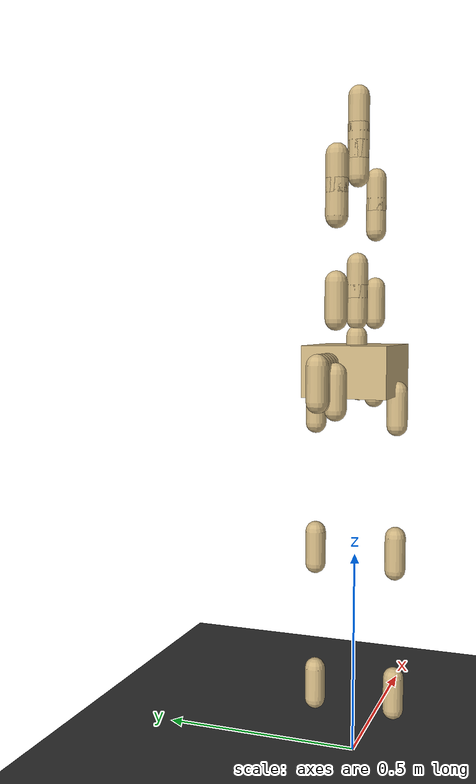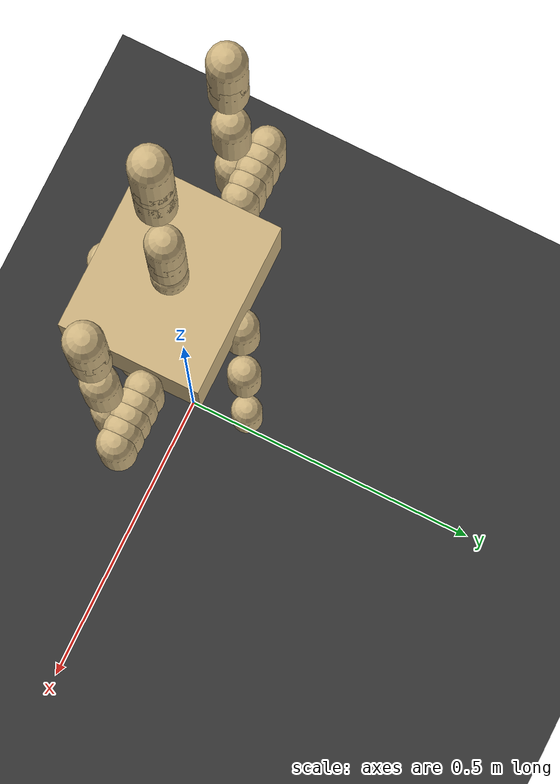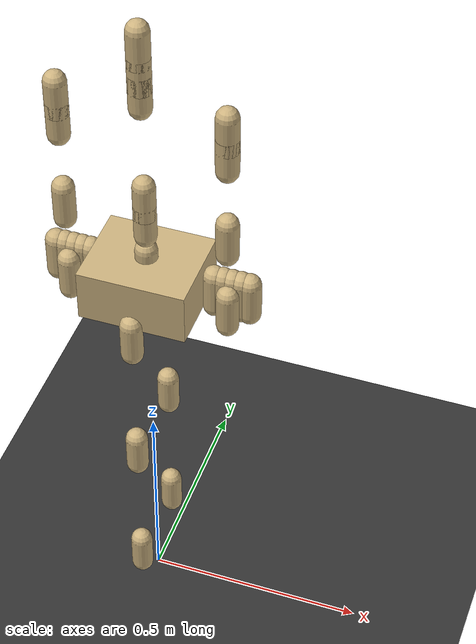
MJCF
<?xml version='1.0' encoding='utf-8'?>
<!-- Robotrola R-01 research MJCF scaffold. Inertias/estimated; not measured hardware. Not a validated digital twin. -->
<mujoco model="robotrola_r01_research">
  <compiler angle="radian" autolimits="true" />
  <option timestep="0.002" gravity="0 0 -9.81" />
  <default>
    <joint damping="0.5" armature="0.01" limited="true" />
    <geom type="capsule" size="0.03" rgba="0.8 0.7 0.5 1" />
  </default>
  <worldbody>
    <geom name="floor" type="plane" size="2 2 0.1" rgba="0.2 0.2 0.2 1" />
    <body name="pelvis_link" pos="0 0 0.95">
      <geom name="pelvis_geom" type="box" size="0.12 0.1 0.06" />
      <inertial mass="8" pos="0 0 0" diaginertia="0.08 0.06 0.05" />
      <body name="waist_link" pos="0 0 0.08">
        <geom name="waist_link_geom" type="capsule" fromto="0 0 0 0 0 -0.08" size="0.025" />
        <inertial mass="0.5" pos="0 0 -0.04" diaginertia="0.002 0.002 0.001" />
        <joint name="waist_yaw" type="hinge" axis="0 0 1" range="-0.6 0.6" />
        <body name="torso_link" pos="0 0 0.12">
          <geom name="torso_link_geom" type="capsule" fromto="0 0 0 0 0 -0.08" size="0.025" />
          <inertial mass="0.5" pos="0 0 -0.04" diaginertia="0.002 0.002 0.001" />
          <joint name="waist_pitch" type="hinge" axis="0 1 0" range="-0.35 0.45" />
          <body name="torso_roll_link" pos="0 0 0.05">
            <geom name="torso_roll_link_geom" type="capsule" fromto="0 0 0 0 0 -0.08" size="0.025" />
            <inertial mass="0.5" pos="0 0 -0.04" diaginertia="0.002 0.002 0.001" />
            <joint name="waist_roll" type="hinge" axis="1 0 0" range="-0.3 0.3" />
            <body name="neck_yaw_link" pos="0 0 0.28">
              <geom name="neck_yaw_link_geom" type="capsule" fromto="0 0 0 0 0 -0.08" size="0.025" />
              <inertial mass="0.5" pos="0 0 -0.04" diaginertia="0.002 0.002 0.001" />
              <joint name="neck_yaw" type="hinge" axis="0 0 1" range="-0.9 0.9" />
              <body name="neck_pitch_link" pos="0 0 0.04">
                <geom name="neck_pitch_link_geom" type="capsule" fromto="0 0 0 0 0 -0.08" size="0.025" />
                <inertial mass="0.5" pos="0 0 -0.04" diaginertia="0.002 0.002 0.001" />
                <joint name="neck_pitch" type="hinge" axis="0 1 0" range="-0.5 0.6" />
                <body name="head_link" pos="0 0 0.06">
                  <geom name="head_link_geom" type="capsule" fromto="0 0 0 0 0 -0.08" size="0.025" />
                  <inertial mass="0.5" pos="0 0 -0.04" diaginertia="0.002 0.002 0.001" />
                  <joint name="neck_roll" type="hinge" axis="1 0 0" range="-0.35 0.35" />
                </body>
              </body>
            </body>
            <body name="left_shoulder_pitch_link" pos="0.18 0 0.22">
              <geom name="left_shoulder_pitch_link_geom" type="capsule" fromto="0 0 0 0 0 -0.08" size="0.025" />
              <inertial mass="0.5" pos="0 0 -0.04" diaginertia="0.002 0.002 0.001" />
              <joint name="left_shoulder_pitch" type="hinge" axis="0 1 0" range="-1.4 1.4" />
              <body name="left_shoulder_roll_link" pos="0 0 0">
                <geom name="left_shoulder_roll_link_geom" type="capsule" fromto="0 0 0 0 0 -0.08" size="0.025" />
                <inertial mass="0.5" pos="0 0 -0.04" diaginertia="0.002 0.002 0.001" />
                <joint name="left_shoulder_roll" type="hinge" axis="1 0 0" range="-0.3 1.5" />
                <body name="left_upper_arm_link" pos="0 0 -0.05">
                  <geom name="left_upper_arm_link_geom" type="capsule" fromto="0 0 0 0 0 -0.08" size="0.025" />
                  <inertial mass="0.5" pos="0 0 -0.04" diaginertia="0.002 0.002 0.001" />
                  <joint name="left_shoulder_yaw" type="hinge" axis="0 0 1" range="-1.2 1.2" />
                  <body name="left_forearm_link" pos="0 0 -0.22">
                    <geom name="left_forearm_link_geom" type="capsule" fromto="0 0 0 0 0 -0.08" size="0.025" />
                    <inertial mass="0.5" pos="0 0 -0.04" diaginertia="0.002 0.002 0.001" />
                    <joint name="left_elbow" type="hinge" axis="0 1 0" range="0.0 2.2" />
                    <body name="left_wrist_yaw_link" pos="0 0 -0.2">
                      <geom name="left_wrist_yaw_link_geom" type="capsule" fromto="0 0 0 0 0 -0.08" size="0.025" />
                      <inertial mass="0.5" pos="0 0 -0.04" diaginertia="0.002 0.002 0.001" />
                      <joint name="left_wrist_yaw" type="hinge" axis="0 0 1" range="-1.4 1.4" />
                      <body name="left_wrist_pitch_link" pos="0 0 0">
                        <geom name="left_wrist_pitch_link_geom" type="capsule" fromto="0 0 0 0 0 -0.08" size="0.025" />
                        <inertial mass="0.5" pos="0 0 -0.04" diaginertia="0.002 0.002 0.001" />
                        <joint name="left_wrist_pitch" type="hinge" axis="0 1 0" range="-0.9 0.9" />
                        <body name="left_hand_link" pos="0 0 0">
                          <geom name="left_hand_link_geom" type="capsule" fromto="0 0 0 0 0 -0.08" size="0.025" />
                          <inertial mass="0.5" pos="0 0 -0.04" diaginertia="0.002 0.002 0.001" />
                          <joint name="left_wrist_roll" type="hinge" axis="1 0 0" range="-0.9 0.9" />
                          <body name="left_thumb_link" pos="-0.04 0.03 0.02">
                            <geom name="left_thumb_link_geom" type="capsule" fromto="0 0 0 0 0 -0.08" size="0.025" />
                            <inertial mass="0.5" pos="0 0 -0.04" diaginertia="0.002 0.002 0.001" />
                            <joint name="left_thumb_curl" type="hinge" axis="0 1 0" range="0.0 1.4" />
                          </body>
                          <body name="left_index_link" pos="-0.02 0.03 0.02">
                            <geom name="left_index_link_geom" type="capsule" fromto="0 0 0 0 0 -0.08" size="0.025" />
                            <inertial mass="0.5" pos="0 0 -0.04" diaginertia="0.002 0.002 0.001" />
                            <joint name="left_index_curl" type="hinge" axis="0 1 0" range="0.0 1.4" />
                          </body>
                          <body name="left_middle_link" pos="0.0 0.03 0.02">
                            <geom name="left_middle_link_geom" type="capsule" fromto="0 0 0 0 0 -0.08" size="0.025" />
                            <inertial mass="0.5" pos="0 0 -0.04" diaginertia="0.002 0.002 0.001" />
                            <joint name="left_middle_curl" type="hinge" axis="0 1 0" range="0.0 1.4" />
                          </body>
                          <body name="left_ring_link" pos="0.02 0.03 0.02">
                            <geom name="left_ring_link_geom" type="capsule" fromto="0 0 0 0 0 -0.08" size="0.025" />
                            <inertial mass="0.5" pos="0 0 -0.04" diaginertia="0.002 0.002 0.001" />
                            <joint name="left_ring_curl" type="hinge" axis="0 1 0" range="0.0 1.4" />
                          </body>
                          <body name="left_pinky_link" pos="0.04 0.03 0.02">
                            <geom name="left_pinky_link_geom" type="capsule" fromto="0 0 0 0 0 -0.08" size="0.025" />
                            <inertial mass="0.5" pos="0 0 -0.04" diaginertia="0.002 0.002 0.001" />
                            <joint name="left_pinky_curl" type="hinge" axis="0 1 0" range="0.0 1.4" />
                          </body>
                        </body>
                      </body>
                    </body>
                  </body>
                </body>
              </body>
            </body>
            <body name="right_shoulder_pitch_link" pos="-0.18 0 0.22">
              <geom name="right_shoulder_pitch_link_geom" type="capsule" fromto="0 0 0 0 0 -0.08" size="0.025" />
              <inertial mass="0.5" pos="0 0 -0.04" diaginertia="0.002 0.002 0.001" />
              <joint name="right_shoulder_pitch" type="hinge" axis="0 1 0" range="-1.4 1.4" />
              <body name="right_shoulder_roll_link" pos="0 0 0">
                <geom name="right_shoulder_roll_link_geom" type="capsule" fromto="0 0 0 0 0 -0.08" size="0.025" />
                <inertial mass="0.5" pos="0 0 -0.04" diaginertia="0.002 0.002 0.001" />
                <joint name="right_shoulder_roll" type="hinge" axis="1 0 0" range="-1.5 0.3" />
                <body name="right_upper_arm_link" pos="0 0 -0.05">
                  <geom name="right_upper_arm_link_geom" type="capsule" fromto="0 0 0 0 0 -0.08" size="0.025" />
                  <inertial mass="0.5" pos="0 0 -0.04" diaginertia="0.002 0.002 0.001" />
                  <joint name="right_shoulder_yaw" type="hinge" axis="0 0 1" range="-1.2 1.2" />
                  <body name="right_forearm_link" pos="0 0 -0.22">
                    <geom name="right_forearm_link_geom" type="capsule" fromto="0 0 0 0 0 -0.08" size="0.025" />
                    <inertial mass="0.5" pos="0 0 -0.04" diaginertia="0.002 0.002 0.001" />
                    <joint name="right_elbow" type="hinge" axis="0 1 0" range="0.0 2.2" />
                    <body name="right_wrist_yaw_link" pos="0 0 -0.2">
                      <geom name="right_wrist_yaw_link_geom" type="capsule" fromto="0 0 0 0 0 -0.08" size="0.025" />
                      <inertial mass="0.5" pos="0 0 -0.04" diaginertia="0.002 0.002 0.001" />
                      <joint name="right_wrist_yaw" type="hinge" axis="0 0 1" range="-1.4 1.4" />
                      <body name="right_wrist_pitch_link" pos="0 0 0">
                        <geom name="right_wrist_pitch_link_geom" type="capsule" fromto="0 0 0 0 0 -0.08" size="0.025" />
                        <inertial mass="0.5" pos="0 0 -0.04" diaginertia="0.002 0.002 0.001" />
                        <joint name="right_wrist_pitch" type="hinge" axis="0 1 0" range="-0.9 0.9" />
                        <body name="right_hand_link" pos="0 0 0">
                          <geom name="right_hand_link_geom" type="capsule" fromto="0 0 0 0 0 -0.08" size="0.025" />
                          <inertial mass="0.5" pos="0 0 -0.04" diaginertia="0.002 0.002 0.001" />
                          <joint name="right_wrist_roll" type="hinge" axis="1 0 0" range="-0.9 0.9" />
                          <body name="right_thumb_link" pos="-0.04 0.03 0.02">
                            <geom name="right_thumb_link_geom" type="capsule" fromto="0 0 0 0 0 -0.08" size="0.025" />
                            <inertial mass="0.5" pos="0 0 -0.04" diaginertia="0.002 0.002 0.001" />
                            <joint name="right_thumb_curl" type="hinge" axis="0 1 0" range="0.0 1.4" />
                          </body>
                          <body name="right_index_link" pos="-0.02 0.03 0.02">
                            <geom name="right_index_link_geom" type="capsule" fromto="0 0 0 0 0 -0.08" size="0.025" />
                            <inertial mass="0.5" pos="0 0 -0.04" diaginertia="0.002 0.002 0.001" />
                            <joint name="right_index_curl" type="hinge" axis="0 1 0" range="0.0 1.4" />
                          </body>
                          <body name="right_middle_link" pos="0.0 0.03 0.02">
                            <geom name="right_middle_link_geom" type="capsule" fromto="0 0 0 0 0 -0.08" size="0.025" />
                            <inertial mass="0.5" pos="0 0 -0.04" diaginertia="0.002 0.002 0.001" />
                            <joint name="right_middle_curl" type="hinge" axis="0 1 0" range="0.0 1.4" />
                          </body>
                          <body name="right_ring_link" pos="0.02 0.03 0.02">
                            <geom name="right_ring_link_geom" type="capsule" fromto="0 0 0 0 0 -0.08" size="0.025" />
                            <inertial mass="0.5" pos="0 0 -0.04" diaginertia="0.002 0.002 0.001" />
                            <joint name="right_ring_curl" type="hinge" axis="0 1 0" range="0.0 1.4" />
                          </body>
                          <body name="right_pinky_link" pos="0.04 0.03 0.02">
                            <geom name="right_pinky_link_geom" type="capsule" fromto="0 0 0 0 0 -0.08" size="0.025" />
                            <inertial mass="0.5" pos="0 0 -0.04" diaginertia="0.002 0.002 0.001" />
                            <joint name="right_pinky_curl" type="hinge" axis="0 1 0" range="0.0 1.4" />
                          </body>
                        </body>
                      </body>
                    </body>
                  </body>
                </body>
              </body>
            </body>
          </body>
        </body>
      </body>
      <body name="left_hip_yaw_link" pos="0 0.1 -0.05">
        <geom name="left_hip_yaw_link_geom" type="capsule" fromto="0 0 0 0 0 -0.08" size="0.025" />
        <inertial mass="0.5" pos="0 0 -0.04" diaginertia="0.002 0.002 0.001" />
        <joint name="left_hip_yaw" type="hinge" axis="0 0 1" range="-0.6 0.6" />
        <body name="left_hip_roll_link" pos="0 0 0">
          <geom name="left_hip_roll_link_geom" type="capsule" fromto="0 0 0 0 0 -0.08" size="0.025" />
          <inertial mass="0.5" pos="0 0 -0.04" diaginertia="0.002 0.002 0.001" />
          <joint name="left_hip_roll" type="hinge" axis="1 0 0" range="-0.4 0.4" />
          <body name="left_thigh_link" pos="0 0 0">
            <geom name="left_thigh_link_geom" type="capsule" fromto="0 0 0 0 0 -0.08" size="0.025" />
            <inertial mass="0.5" pos="0 0 -0.04" diaginertia="0.002 0.002 0.001" />
            <joint name="left_hip_pitch" type="hinge" axis="0 1 0" range="-1.4 0.8" />
            <body name="left_shin_link" pos="0 0 -0.35">
              <geom name="left_shin_link_geom" type="capsule" fromto="0 0 0 0 0 -0.08" size="0.025" />
              <inertial mass="0.5" pos="0 0 -0.04" diaginertia="0.002 0.002 0.001" />
              <joint name="left_knee" type="hinge" axis="0 1 0" range="0.0 2.2" />
              <body name="left_ankle_pitch_link" pos="0 0 -0.35">
                <geom name="left_ankle_pitch_link_geom" type="capsule" fromto="0 0 0 0 0 -0.08" size="0.025" />
                <inertial mass="0.5" pos="0 0 -0.04" diaginertia="0.002 0.002 0.001" />
                <joint name="left_ankle_pitch" type="hinge" axis="0 1 0" range="-0.7 0.7" />
                <body name="left_foot_link" pos="0 0 0">
                  <geom name="left_foot_link_geom" type="capsule" fromto="0 0 0 0 0 -0.08" size="0.025" />
                  <inertial mass="0.5" pos="0 0 -0.04" diaginertia="0.002 0.002 0.001" />
                  <joint name="left_ankle_roll" type="hinge" axis="1 0 0" range="-0.4 0.4" />
                </body>
              </body>
            </body>
          </body>
        </body>
      </body>
      <body name="right_hip_yaw_link" pos="0 -0.1 -0.05">
        <geom name="right_hip_yaw_link_geom" type="capsule" fromto="0 0 0 0 0 -0.08" size="0.025" />
        <inertial mass="0.5" pos="0 0 -0.04" diaginertia="0.002 0.002 0.001" />
        <joint name="right_hip_yaw" type="hinge" axis="0 0 1" range="-0.6 0.6" />
        <body name="right_hip_roll_link" pos="0 0 0">
          <geom name="right_hip_roll_link_geom" type="capsule" fromto="0 0 0 0 0 -0.08" size="0.025" />
          <inertial mass="0.5" pos="0 0 -0.04" diaginertia="0.002 0.002 0.001" />
          <joint name="right_hip_roll" type="hinge" axis="1 0 0" range="-0.4 0.4" />
          <body name="right_thigh_link" pos="0 0 0">
            <geom name="right_thigh_link_geom" type="capsule" fromto="0 0 0 0 0 -0.08" size="0.025" />
            <inertial mass="0.5" pos="0 0 -0.04" diaginertia="0.002 0.002 0.001" />
            <joint name="right_hip_pitch" type="hinge" axis="0 1 0" range="-1.4 0.8" />
            <body name="right_shin_link" pos="0 0 -0.35">
              <geom name="right_shin_link_geom" type="capsule" fromto="0 0 0 0 0 -0.08" size="0.025" />
              <inertial mass="0.5" pos="0 0 -0.04" diaginertia="0.002 0.002 0.001" />
              <joint name="right_knee" type="hinge" axis="0 1 0" range="0.0 2.2" />
              <body name="right_ankle_pitch_link" pos="0 0 -0.35">
                <geom name="right_ankle_pitch_link_geom" type="capsule" fromto="0 0 0 0 0 -0.08" size="0.025" />
                <inertial mass="0.5" pos="0 0 -0.04" diaginertia="0.002 0.002 0.001" />
                <joint name="right_ankle_pitch" type="hinge" axis="0 1 0" range="-0.7 0.7" />
                <body name="right_foot_link" pos="0 0 0">
                  <geom name="right_foot_link_geom" type="capsule" fromto="0 0 0 0 0 -0.08" size="0.025" />
                  <inertial mass="0.5" pos="0 0 -0.04" diaginertia="0.002 0.002 0.001" />
                  <joint name="right_ankle_roll" type="hinge" axis="1 0 0" range="-0.4 0.4" />
                </body>
              </body>
            </body>
          </body>
        </body>
      </body>
    </body>
  </worldbody>
  <actuator>
    <position name="act_waist_yaw" joint="waist_yaw" kp="20" ctrlrange="-0.6 0.6" />
    <position name="act_waist_pitch" joint="waist_pitch" kp="20" ctrlrange="-0.35 0.45" />
    <position name="act_waist_roll" joint="waist_roll" kp="20" ctrlrange="-0.3 0.3" />
    <position name="act_neck_yaw" joint="neck_yaw" kp="20" ctrlrange="-0.9 0.9" />
    <position name="act_neck_pitch" joint="neck_pitch" kp="20" ctrlrange="-0.5 0.6" />
    <position name="act_neck_roll" joint="neck_roll" kp="20" ctrlrange="-0.35 0.35" />
    <position name="act_left_shoulder_pitch" joint="left_shoulder_pitch" kp="20" ctrlrange="-1.4 1.4" />
    <position name="act_left_shoulder_roll" joint="left_shoulder_roll" kp="20" ctrlrange="-0.3 1.5" />
    <position name="act_left_shoulder_yaw" joint="left_shoulder_yaw" kp="20" ctrlrange="-1.2 1.2" />
    <position name="act_left_elbow" joint="left_elbow" kp="20" ctrlrange="0.0 2.2" />
    <position name="act_left_wrist_yaw" joint="left_wrist_yaw" kp="20" ctrlrange="-1.4 1.4" />
    <position name="act_left_wrist_pitch" joint="left_wrist_pitch" kp="20" ctrlrange="-0.9 0.9" />
  </actuator>
  <size nconmax="200" njmax="500" />
</mujoco>
